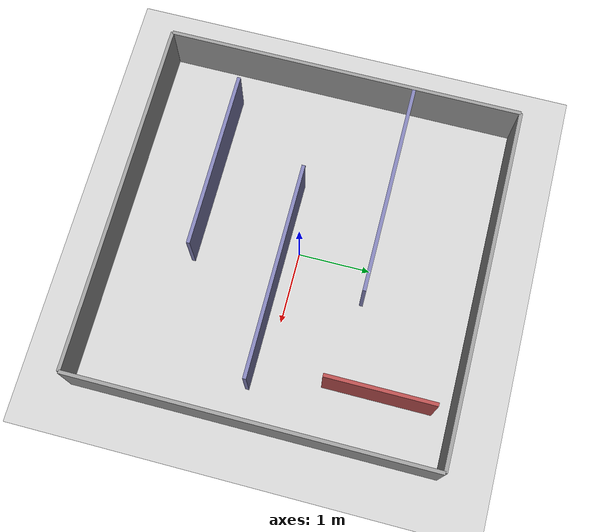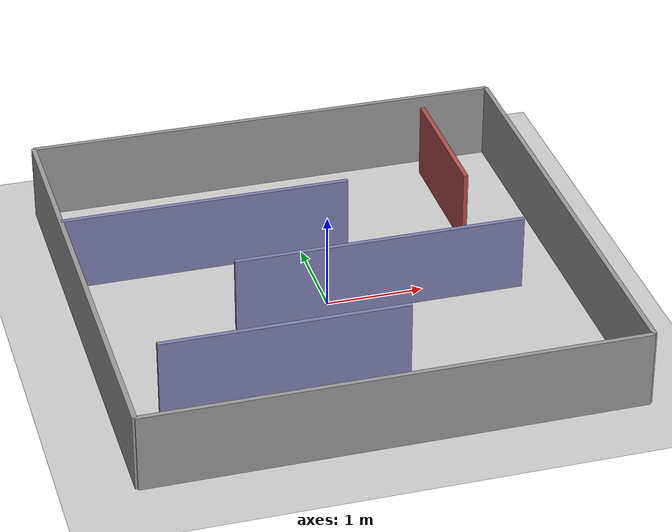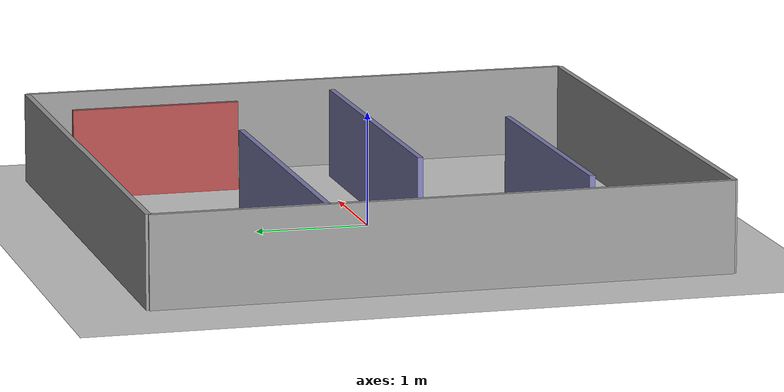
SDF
<?xml version="1.0" ?>
<sdf version="1.6">
  <world name="maze_deadlock">
    <include><uri>model://ground_plane</uri></include>
    <include><uri>model://sun</uri></include>

    <!-- Outer boundary (5m x 5m) -->
    <model name="wall_n"><static>true</static><pose>0 2.5 0.4 0 0 0</pose>
      <link name="link"><collision name="c"><geometry><box><size>5 0.05 0.8</size></box></geometry></collision>
      <visual name="v"><geometry><box><size>5 0.05 0.8</size></box></geometry><material><ambient>0.6 0.6 0.6 1</ambient></material></visual></link></model>
    <model name="wall_s"><static>true</static><pose>0 -2.5 0.4 0 0 0</pose>
      <link name="link"><collision name="c"><geometry><box><size>5 0.05 0.8</size></box></geometry></collision>
      <visual name="v"><geometry><box><size>5 0.05 0.8</size></box></geometry><material><ambient>0.6 0.6 0.6 1</ambient></material></visual></link></model>
    <model name="wall_e"><static>true</static><pose>2.5 0 0.4 0 0 1.5708</pose>
      <link name="link"><collision name="c"><geometry><box><size>5 0.05 0.8</size></box></geometry></collision>
      <visual name="v"><geometry><box><size>5 0.05 0.8</size></box></geometry><material><ambient>0.6 0.6 0.6 1</ambient></material></visual></link></model>
    <model name="wall_w"><static>true</static><pose>-2.5 0 0.4 0 0 1.5708</pose>
      <link name="link"><collision name="c"><geometry><box><size>5 0.05 0.8</size></box></geometry></collision>
      <visual name="v"><geometry><box><size>5 0.05 0.8</size></box></geometry><material><ambient>0.6 0.6 0.6 1</ambient></material></visual></link></model>

    <!-- Internal maze partitions forming a zigzag path with a dead-end pocket -->
    <model name="partition1"><static>true</static><pose>-1.0 1.0 0.4 0 0 0</pose>
      <link name="link"><collision name="c"><geometry><box><size>3 0.05 0.8</size></box></geometry></collision>
      <visual name="v"><geometry><box><size>3 0.05 0.8</size></box></geometry><material><ambient>0.5 0.5 0.7 1</ambient></material></visual></link></model>
    <model name="partition2"><static>true</static><pose>0.5 -0.2 0.4 0 0 0</pose>
      <link name="link"><collision name="c"><geometry><box><size>3 0.05 0.8</size></box></geometry></collision>
      <visual name="v"><geometry><box><size>3 0.05 0.8</size></box></geometry><material><ambient>0.5 0.5 0.7 1</ambient></material></visual></link></model>
    <model name="partition3"><static>true</static><pose>-0.8 -1.4 0.4 0 0 0</pose>
      <link name="link"><collision name="c"><geometry><box><size>2.5 0.05 0.8</size></box></geometry></collision>
      <visual name="v"><geometry><box><size>2.5 0.05 0.8</size></box></geometry><material><ambient>0.5 0.5 0.7 1</ambient></material></visual></link></model>
    <!-- Dead-end pocket wall: robot can enter but must backtrack (deadlock test) -->
    <model name="deadend_wall"><static>true</static><pose>1.7 1.5 0.4 0 0 1.5708</pose>
      <link name="link"><collision name="c"><geometry><box><size>1.5 0.05 0.8</size></box></geometry></collision>
      <visual name="v"><geometry><box><size>1.5 0.05 0.8</size></box></geometry><material><ambient>0.7 0.3 0.3 1</ambient></material></visual></link></model>

    <physics type="ode">
      <max_step_size>0.001</max_step_size>
      <real_time_factor>1</real_time_factor>
    </physics>
  </world>
</sdf>
